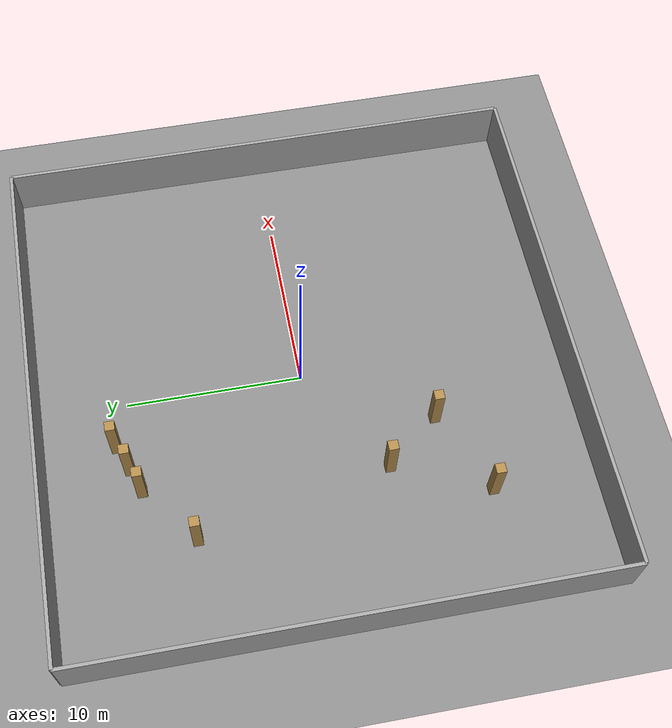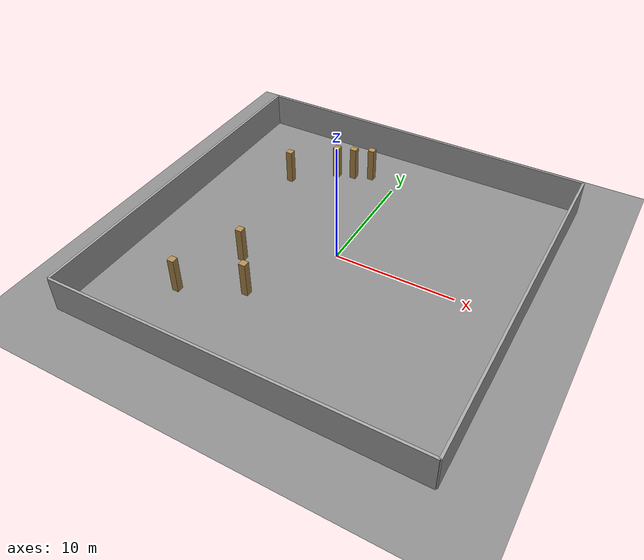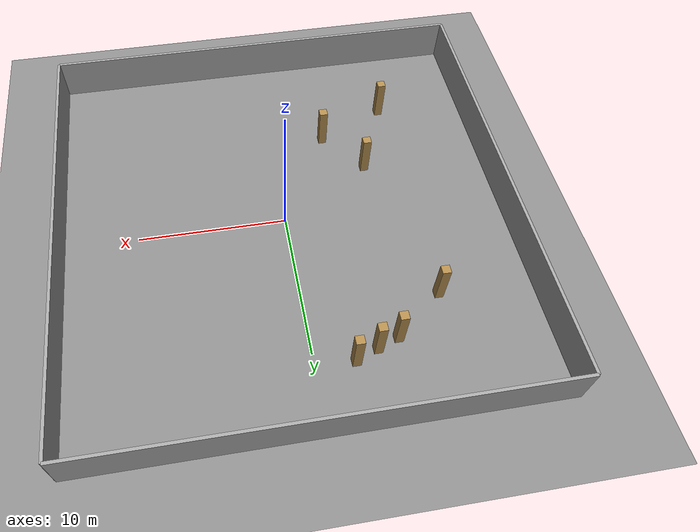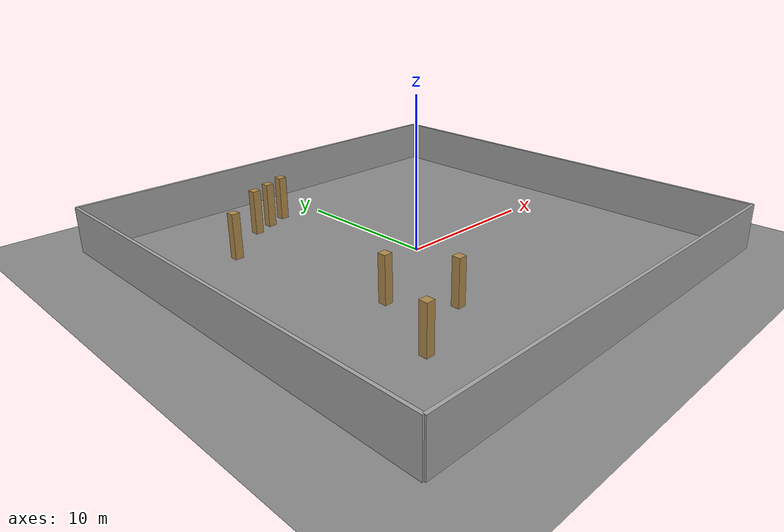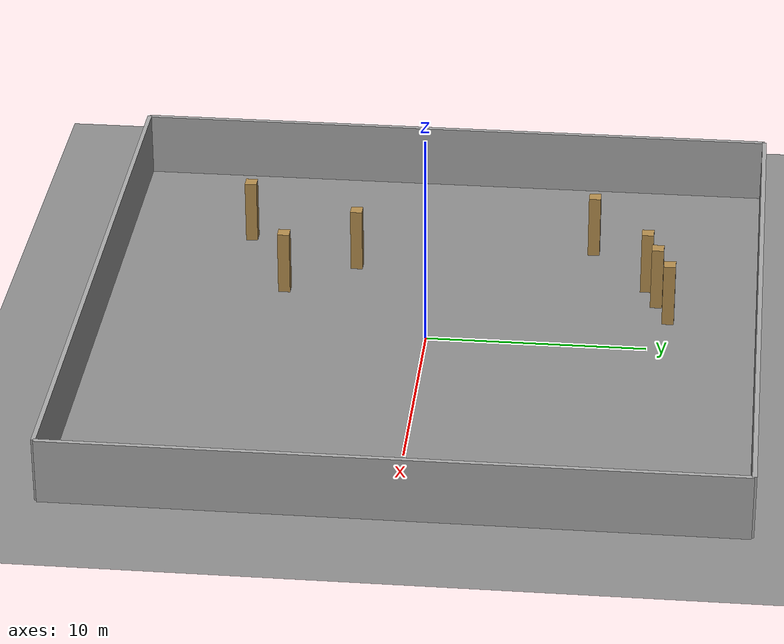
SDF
<?xml version="1.0"?>
<sdf version="1.6">
  <world name="hall_dark_medium_1">
    <physics name="default_physics" type="ode">
      <real_time_update_rate>1000</real_time_update_rate>
      <max_step_size>0.001</max_step_size>
    </physics>
    <scene>
      <ambient>0.01 0.01 0.01 1</ambient>
      <background>0.08 0.09 0.12 1</background>
      <shadows>true</shadows>
    </scene>
    <light name="sun" type="directional">
      <cast_shadows>true</cast_shadows>
      <pose>0 0 20 0 0 0</pose>
      <diffuse>0.04 0.04 0.04 1.0</diffuse>
      <specular>0.04 0.04 0.04 1.0</specular>
      <direction>-0.5 0.2 -1</direction>
    </light>
    <model name="ground_plane">
      <static>true</static>
      <link name="link">
        <collision name="collision"><geometry><plane><normal>0 0 1</normal><size>100 100</size></plane></geometry></collision>
        <visual name="visual">
          <geometry><plane><normal>0 0 1</normal><size>100 100</size></plane></geometry>
          <material><ambient>0.35 0.35 0.35 1</ambient><diffuse>0.55 0.55 0.55 1</diffuse></material>
        </visual>
      </link>
    </model>

    <model name="hall_north">
      <static>true</static>
      <pose>0.0000 15.0000 1.5000 0 0 0</pose>
      <link name="link">
        <collision name="collision"><geometry><box><size>30 0.2 3</size></box></geometry></collision>
        <visual name="visual">
          <geometry><box><size>30 0.2 3</size></box></geometry>
          <material><ambient>0.65 0.65 0.65 1</ambient><diffuse>0.65 0.65 0.65 1</diffuse></material>
        </visual>
      </link>
    </model>

    <model name="hall_south">
      <static>true</static>
      <pose>0.0000 -15.0000 1.5000 0 0 0</pose>
      <link name="link">
        <collision name="collision"><geometry><box><size>30 0.2 3</size></box></geometry></collision>
        <visual name="visual">
          <geometry><box><size>30 0.2 3</size></box></geometry>
          <material><ambient>0.65 0.65 0.65 1</ambient><diffuse>0.65 0.65 0.65 1</diffuse></material>
        </visual>
      </link>
    </model>

    <model name="hall_east">
      <static>true</static>
      <pose>15.0000 0.0000 1.5000 0 0 0</pose>
      <link name="link">
        <collision name="collision"><geometry><box><size>0.2 30 3</size></box></geometry></collision>
        <visual name="visual">
          <geometry><box><size>0.2 30 3</size></box></geometry>
          <material><ambient>0.65 0.65 0.65 1</ambient><diffuse>0.65 0.65 0.65 1</diffuse></material>
        </visual>
      </link>
    </model>

    <model name="hall_west">
      <static>true</static>
      <pose>-15.0000 0.0000 1.5000 0 0 0</pose>
      <link name="link">
        <collision name="collision"><geometry><box><size>0.2 30 3</size></box></geometry></collision>
        <visual name="visual">
          <geometry><box><size>0.2 30 3</size></box></geometry>
          <material><ambient>0.65 0.65 0.65 1</ambient><diffuse>0.65 0.65 0.65 1</diffuse></material>
        </visual>
      </link>
    </model>

    <model name="hall_column_0">
      <static>true</static>
      <pose>-5.4146 9.7860 1.5000 0 0 0</pose>
      <link name="link">
        <collision name="collision"><geometry><box><size>0.55 0.55 3</size></box></geometry></collision>
        <visual name="visual">
          <geometry><box><size>0.55 0.55 3</size></box></geometry>
          <material><ambient>0.70 0.55 0.30 1</ambient><diffuse>0.70 0.55 0.30 1</diffuse></material>
        </visual>
      </link>
    </model>

    <model name="hall_column_1">
      <static>true</static>
      <pose>-8.7041 7.1720 1.5000 0 0 0</pose>
      <link name="link">
        <collision name="collision"><geometry><box><size>0.55 0.55 3</size></box></geometry></collision>
        <visual name="visual">
          <geometry><box><size>0.55 0.55 3</size></box></geometry>
          <material><ambient>0.70 0.55 0.30 1</ambient><diffuse>0.70 0.55 0.30 1</diffuse></material>
        </visual>
      </link>
    </model>

    <model name="hall_column_2">
      <static>true</static>
      <pose>-4.0050 10.3020 1.5000 0 0 0</pose>
      <link name="link">
        <collision name="collision"><geometry><box><size>0.55 0.55 3</size></box></geometry></collision>
        <visual name="visual">
          <geometry><box><size>0.55 0.55 3</size></box></geometry>
          <material><ambient>0.70 0.55 0.30 1</ambient><diffuse>0.70 0.55 0.30 1</diffuse></material>
        </visual>
      </link>
    </model>

    <model name="hall_column_3">
      <static>true</static>
      <pose>-2.5333 10.8921 1.5000 0 0 0</pose>
      <link name="link">
        <collision name="collision"><geometry><box><size>0.55 0.55 3</size></box></geometry></collision>
        <visual name="visual">
          <geometry><box><size>0.55 0.55 3</size></box></geometry>
          <material><ambient>0.70 0.55 0.30 1</ambient><diffuse>0.70 0.55 0.30 1</diffuse></material>
        </visual>
      </link>
    </model>

    <model name="hall_column_4">
      <static>true</static>
      <pose>-3.8659 -6.9278 1.5000 0 0 0</pose>
      <link name="link">
        <collision name="collision"><geometry><box><size>0.55 0.55 3</size></box></geometry></collision>
        <visual name="visual">
          <geometry><box><size>0.55 0.55 3</size></box></geometry>
          <material><ambient>0.70 0.55 0.30 1</ambient><diffuse>0.70 0.55 0.30 1</diffuse></material>
        </visual>
      </link>
    </model>

    <model name="hall_column_5">
      <static>true</static>
      <pose>-6.3501 -3.8263 1.5000 0 0 0</pose>
      <link name="link">
        <collision name="collision"><geometry><box><size>0.55 0.55 3</size></box></geometry></collision>
        <visual name="visual">
          <geometry><box><size>0.55 0.55 3</size></box></geometry>
          <material><ambient>0.70 0.55 0.30 1</ambient><diffuse>0.70 0.55 0.30 1</diffuse></material>
        </visual>
      </link>
    </model>

    <model name="hall_column_6">
      <static>true</static>
      <pose>-8.6530 -9.0999 1.5000 0 0 0</pose>
      <link name="link">
        <collision name="collision"><geometry><box><size>0.55 0.55 3</size></box></geometry></collision>
        <visual name="visual">
          <geometry><box><size>0.55 0.55 3</size></box></geometry>
          <material><ambient>0.70 0.55 0.30 1</ambient><diffuse>0.70 0.55 0.30 1</diffuse></material>
        </visual>
      </link>
    </model>
  </world>
</sdf>
